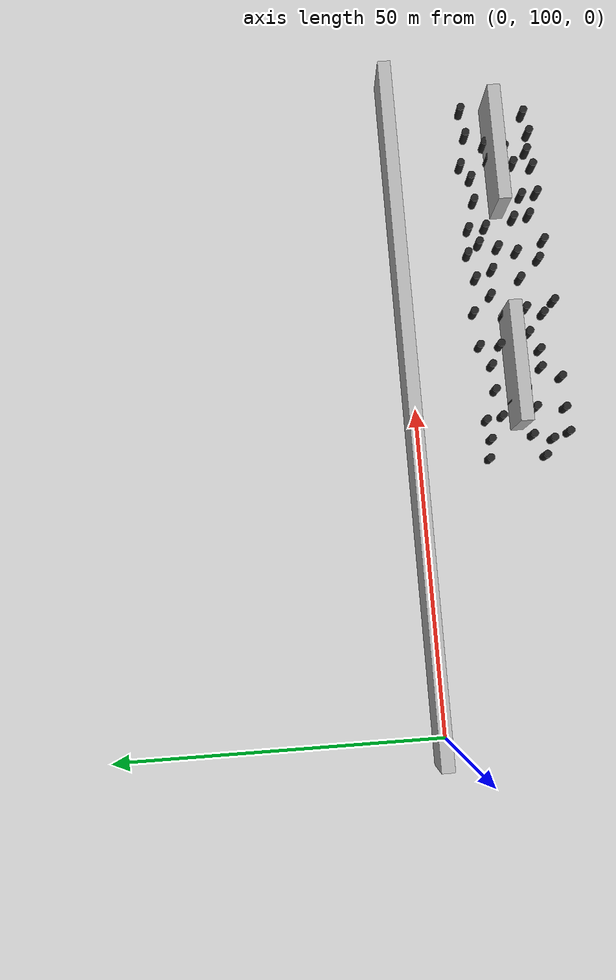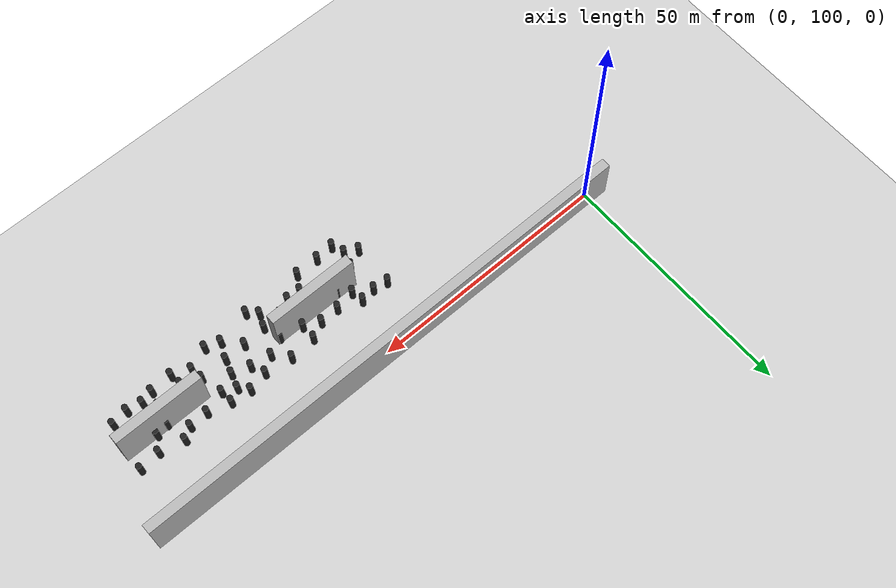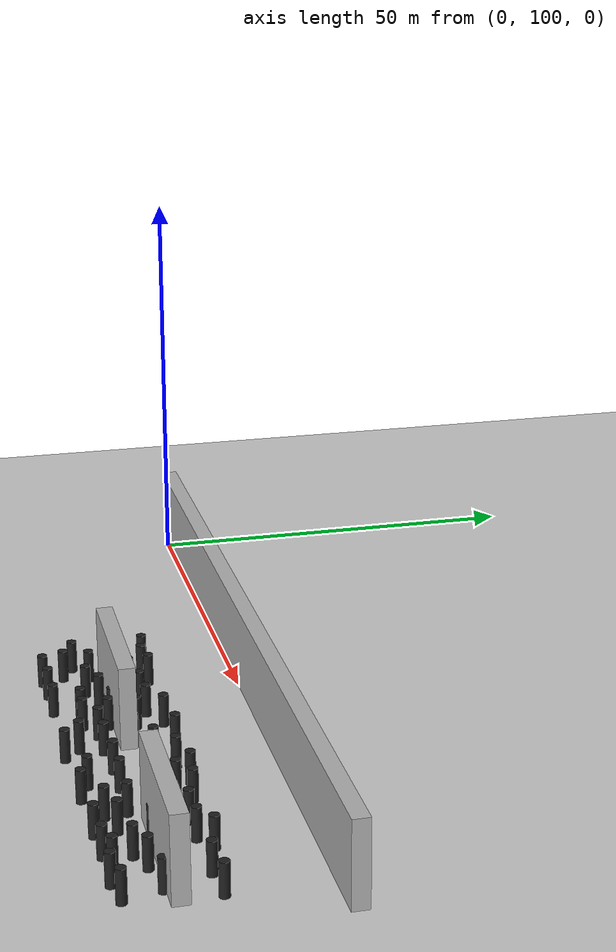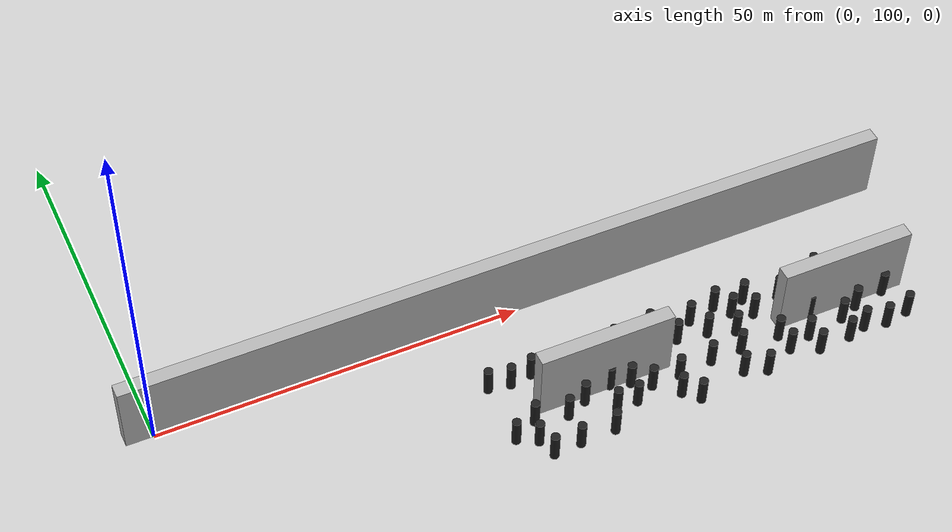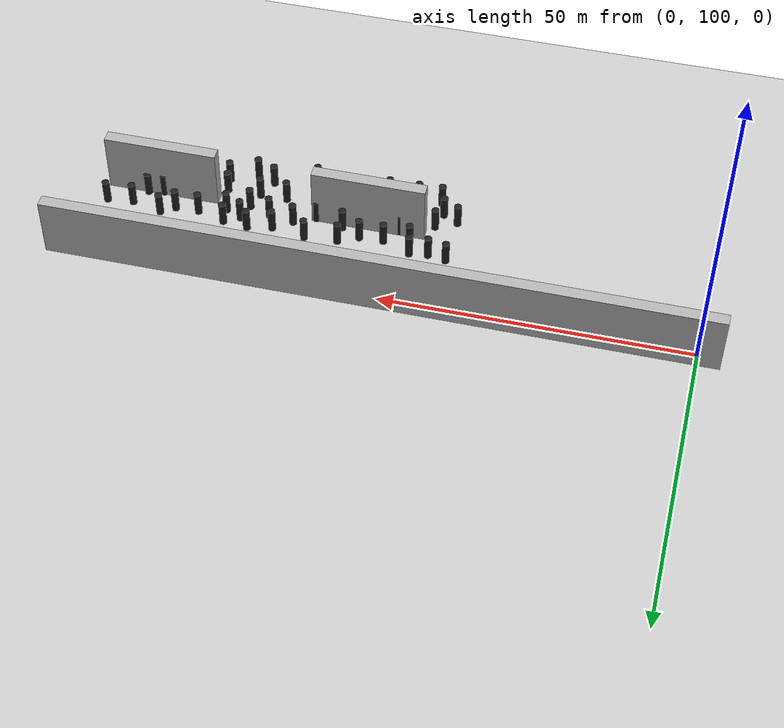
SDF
<sdf version="1.7">
 <world name="default">
  <model name="ground_plane">
   <pose>20 20 0 0 -0 0</pose>
   <static>1</static>
   <link name="link">
    <collision name="collision">
     <geometry><plane><normal>0 0 1</normal><size>200 200</size></plane></geometry>
     <surface><friction><ode><mu>100</mu><mu2>50</mu2></ode></friction></surface>
    </collision>
    <visual name="visual">
     <cast_shadows>0</cast_shadows>
     <geometry><plane><normal>0 0 1</normal><size>200 200</size></plane></geometry>
     <material>
      <script><uri>file://media/materials/scripts/gazebo.material</uri><name>Gazebo/Grey</name></script>
     </material>
    </visual>
   </link>
  </model>
  <model name="pillar_top_area_0">
   <static>1</static>
   <pose>65.27 77.0897 0 0 -0 0</pose>
   <link name="link">
    <pose>0 0 2 0 -0 0</pose>
    <inertial>
     <mass>1</mass>
     <inertia><ixx>0.083</ixx><ixy>0</ixy><ixz>0</ixz><iyy>0.083</iyy><iyz>0</iyz><izz>0.083</izz></inertia>
    </inertial>
    <collision name="collision">
     <geometry><cylinder><radius>0.6</radius><length>4</length></cylinder></geometry>
    </collision>
    <visual name="visual">
     <geometry><cylinder><radius>0.6</radius><length>4</length></cylinder></geometry>
     <material>
      <script><uri>file://media/materials/scripts/gazebo.material</uri><name>Gazebo/Black</name></script>
     </material>
    </visual>
   </link>
  </model>
  <model name="pillar_top_area_4">
   <static>1</static>
   <pose>58.2136 82.9709 0 0 -0 0</pose>
   <link name="link">
    <pose>0 0 2 0 -0 0</pose>
    <inertial>
     <mass>1</mass>
     <inertia><ixx>0.083</ixx><ixy>0</ixy><ixz>0</ixz><iyy>0.083</iyy><iyz>0</iyz><izz>0.083</izz></inertia>
    </inertial>
    <collision name="collision">
     <geometry><cylinder><radius>0.6</radius><length>4</length></cylinder></geometry>
    </collision>
    <visual name="visual">
     <geometry><cylinder><radius>0.6</radius><length>4</length></cylinder></geometry>
     <material>
      <script><uri>file://media/materials/scripts/gazebo.material</uri><name>Gazebo/Black</name></script>
     </material>
    </visual>
   </link>
  </model>
  <model name="pillar_top_area_5">
   <static>1</static>
   <pose>83.1219 77.8962 0 0 -0 0</pose>
   <link name="link">
    <pose>0 0 2 0 -0 0</pose>
    <inertial>
     <mass>1</mass>
     <inertia><ixx>0.083</ixx><ixy>0</ixy><ixz>0</ixz><iyy>0.083</iyy><iyz>0</iyz><izz>0.083</izz></inertia>
    </inertial>
    <collision name="collision">
     <geometry><cylinder><radius>0.6</radius><length>4</length></cylinder></geometry>
    </collision>
    <visual name="visual">
     <geometry><cylinder><radius>0.6</radius><length>4</length></cylinder></geometry>
     <material>
      <script><uri>file://media/materials/scripts/gazebo.material</uri><name>Gazebo/Black</name></script>
     </material>
    </visual>
   </link>
  </model>
  <model name="pillar_top_area_7">
   <static>1</static>
   <pose>54.8479 80.1541 0 0 -0 0</pose>
   <link name="link">
    <pose>0 0 2 0 -0 0</pose>
    <inertial>
     <mass>1</mass>
     <inertia><ixx>0.083</ixx><ixy>0</ixy><ixz>0</ixz><iyy>0.083</iyy><iyz>0</iyz><izz>0.083</izz></inertia>
    </inertial>
    <collision name="collision">
     <geometry><cylinder><radius>0.6</radius><length>4</length></cylinder></geometry>
    </collision>
    <visual name="visual">
     <geometry><cylinder><radius>0.6</radius><length>4</length></cylinder></geometry>
     <material>
      <script><uri>file://media/materials/scripts/gazebo.material</uri><name>Gazebo/Black</name></script>
     </material>
    </visual>
   </link>
  </model>
  <model name="pillar_top_area_15">
   <static>1</static>
   <pose>74.624 84.9376 0 0 -0 0</pose>
   <link name="link">
    <pose>0 0 2 0 -0 0</pose>
    <inertial>
     <mass>1</mass>
     <inertia><ixx>0.083</ixx><ixy>0</ixy><ixz>0</ixz><iyy>0.083</iyy><iyz>0</iyz><izz>0.083</izz></inertia>
    </inertial>
    <collision name="collision">
     <geometry><cylinder><radius>0.6</radius><length>4</length></cylinder></geometry>
    </collision>
    <visual name="visual">
     <geometry><cylinder><radius>0.6</radius><length>4</length></cylinder></geometry>
     <material>
      <script><uri>file://media/materials/scripts/gazebo.material</uri><name>Gazebo/Black</name></script>
     </material>
    </visual>
   </link>
  </model>
  <model name="pillar_top_area_16">
   <static>1</static>
   <pose>88.5589 89.563 0 0 -0 0</pose>
   <link name="link">
    <pose>0 0 2 0 -0 0</pose>
    <inertial>
     <mass>1</mass>
     <inertia><ixx>0.083</ixx><ixy>0</ixy><ixz>0</ixz><iyy>0.083</iyy><iyz>0</iyz><izz>0.083</izz></inertia>
    </inertial>
    <collision name="collision">
     <geometry><cylinder><radius>0.6</radius><length>4</length></cylinder></geometry>
    </collision>
    <visual name="visual">
     <geometry><cylinder><radius>0.6</radius><length>4</length></cylinder></geometry>
     <material>
      <script><uri>file://media/materials/scripts/gazebo.material</uri><name>Gazebo/Black</name></script>
     </material>
    </visual>
   </link>
  </model>
  <model name="pillar_top_area_19">
   <static>1</static>
   <pose>72.2869 78.6912 0 0 -0 0</pose>
   <link name="link">
    <pose>0 0 2 0 -0 0</pose>
    <inertial>
     <mass>1</mass>
     <inertia><ixx>0.083</ixx><ixy>0</ixy><ixz>0</ixz><iyy>0.083</iyy><iyz>0</iyz><izz>0.083</izz></inertia>
    </inertial>
    <collision name="collision">
     <geometry><cylinder><radius>0.6</radius><length>4</length></cylinder></geometry>
    </collision>
    <visual name="visual">
     <geometry><cylinder><radius>0.6</radius><length>4</length></cylinder></geometry>
     <material>
      <script><uri>file://media/materials/scripts/gazebo.material</uri><name>Gazebo/Black</name></script>
     </material>
    </visual>
   </link>
  </model>
  <model name="pillar_top_area_22">
   <static>1</static>
   <pose>58.8828 86.1294 0 0 -0 0</pose>
   <link name="link">
    <pose>0 0 2 0 -0 0</pose>
    <inertial>
     <mass>1</mass>
     <inertia><ixx>0.083</ixx><ixy>0</ixy><ixz>0</ixz><iyy>0.083</iyy><iyz>0</iyz><izz>0.083</izz></inertia>
    </inertial>
    <collision name="collision">
     <geometry><cylinder><radius>0.6</radius><length>4</length></cylinder></geometry>
    </collision>
    <visual name="visual">
     <geometry><cylinder><radius>0.6</radius><length>4</length></cylinder></geometry>
     <material>
      <script><uri>file://media/materials/scripts/gazebo.material</uri><name>Gazebo/Black</name></script>
     </material>
    </visual>
   </link>
  </model>
  <model name="pillar_top_area_23">
   <static>1</static>
   <pose>51.7859 87.6018 0 0 -0 0</pose>
   <link name="link">
    <pose>0 0 2 0 -0 0</pose>
    <inertial>
     <mass>1</mass>
     <inertia><ixx>0.083</ixx><ixy>0</ixy><ixz>0</ixz><iyy>0.083</iyy><iyz>0</iyz><izz>0.083</izz></inertia>
    </inertial>
    <collision name="collision">
     <geometry><cylinder><radius>0.6</radius><length>4</length></cylinder></geometry>
    </collision>
    <visual name="visual">
     <geometry><cylinder><radius>0.6</radius><length>4</length></cylinder></geometry>
     <material>
      <script><uri>file://media/materials/scripts/gazebo.material</uri><name>Gazebo/Black</name></script>
     </material>
    </visual>
   </link>
  </model>
  <model name="pillar_top_area_24">
   <static>1</static>
   <pose>58.9276 89.331 0 0 -0 0</pose>
   <link name="link">
    <pose>0 0 2 0 -0 0</pose>
    <inertial>
     <mass>1</mass>
     <inertia><ixx>0.083</ixx><ixy>0</ixy><ixz>0</ixz><iyy>0.083</iyy><iyz>0</iyz><izz>0.083</izz></inertia>
    </inertial>
    <collision name="collision">
     <geometry><cylinder><radius>0.6</radius><length>4</length></cylinder></geometry>
    </collision>
    <visual name="visual">
     <geometry><cylinder><radius>0.6</radius><length>4</length></cylinder></geometry>
     <material>
      <script><uri>file://media/materials/scripts/gazebo.material</uri><name>Gazebo/Black</name></script>
     </material>
    </visual>
   </link>
  </model>
  <model name="pillar_top_area_29">
   <static>1</static>
   <pose>78.1244 86.5801 0 0 -0 0</pose>
   <link name="link">
    <pose>0 0 2 0 -0 0</pose>
    <inertial>
     <mass>1</mass>
     <inertia><ixx>0.083</ixx><ixy>0</ixy><ixz>0</ixz><iyy>0.083</iyy><iyz>0</iyz><izz>0.083</izz></inertia>
    </inertial>
    <collision name="collision">
     <geometry><cylinder><radius>0.6</radius><length>4</length></cylinder></geometry>
    </collision>
    <visual name="visual">
     <geometry><cylinder><radius>0.6</radius><length>4</length></cylinder></geometry>
     <material>
      <script><uri>file://media/materials/scripts/gazebo.material</uri><name>Gazebo/Black</name></script>
     </material>
    </visual>
   </link>
  </model>
  <model name="pillar_top_area_33">
   <static>1</static>
   <pose>82.5088 87.9812 0 0 -0 0</pose>
   <link name="link">
    <pose>0 0 2 0 -0 0</pose>
    <inertial>
     <mass>1</mass>
     <inertia><ixx>0.083</ixx><ixy>0</ixy><ixz>0</ixz><iyy>0.083</iyy><iyz>0</iyz><izz>0.083</izz></inertia>
    </inertial>
    <collision name="collision">
     <geometry><cylinder><radius>0.6</radius><length>4</length></cylinder></geometry>
    </collision>
    <visual name="visual">
     <geometry><cylinder><radius>0.6</radius><length>4</length></cylinder></geometry>
     <material>
      <script><uri>file://media/materials/scripts/gazebo.material</uri><name>Gazebo/Black</name></script>
     </material>
    </visual>
   </link>
  </model>
  <model name="pillar_top_area_34">
   <static>1</static>
   <pose>63.4216 78.9184 0 0 -0 0</pose>
   <link name="link">
    <pose>0 0 2 0 -0 0</pose>
    <inertial>
     <mass>1</mass>
     <inertia><ixx>0.083</ixx><ixy>0</ixy><ixz>0</ixz><iyy>0.083</iyy><iyz>0</iyz><izz>0.083</izz></inertia>
    </inertial>
    <collision name="collision">
     <geometry><cylinder><radius>0.6</radius><length>4</length></cylinder></geometry>
    </collision>
    <visual name="visual">
     <geometry><cylinder><radius>0.6</radius><length>4</length></cylinder></geometry>
     <material>
      <script><uri>file://media/materials/scripts/gazebo.material</uri><name>Gazebo/Black</name></script>
     </material>
    </visual>
   </link>
  </model>
  <model name="pillar_top_area_36">
   <static>1</static>
   <pose>69.8698 88.8655 0 0 -0 0</pose>
   <link name="link">
    <pose>0 0 2 0 -0 0</pose>
    <inertial>
     <mass>1</mass>
     <inertia><ixx>0.083</ixx><ixy>0</ixy><ixz>0</ixz><iyy>0.083</iyy><iyz>0</iyz><izz>0.083</izz></inertia>
    </inertial>
    <collision name="collision">
     <geometry><cylinder><radius>0.6</radius><length>4</length></cylinder></geometry>
    </collision>
    <visual name="visual">
     <geometry><cylinder><radius>0.6</radius><length>4</length></cylinder></geometry>
     <material>
      <script><uri>file://media/materials/scripts/gazebo.material</uri><name>Gazebo/Black</name></script>
     </material>
    </visual>
   </link>
  </model>
  <model name="pillar_top_area_41">
   <static>1</static>
   <pose>71.0641 86.1713 0 0 -0 0</pose>
   <link name="link">
    <pose>0 0 2 0 -0 0</pose>
    <inertial>
     <mass>1</mass>
     <inertia><ixx>0.083</ixx><ixy>0</ixy><ixz>0</ixz><iyy>0.083</iyy><iyz>0</iyz><izz>0.083</izz></inertia>
    </inertial>
    <collision name="collision">
     <geometry><cylinder><radius>0.6</radius><length>4</length></cylinder></geometry>
    </collision>
    <visual name="visual">
     <geometry><cylinder><radius>0.6</radius><length>4</length></cylinder></geometry>
     <material>
      <script><uri>file://media/materials/scripts/gazebo.material</uri><name>Gazebo/Black</name></script>
     </material>
    </visual>
   </link>
  </model>
  <model name="pillar_top_area_42">
   <static>1</static>
   <pose>79.2469 82.0038 0 0 -0 0</pose>
   <link name="link">
    <pose>0 0 2 0 -0 0</pose>
    <inertial>
     <mass>1</mass>
     <inertia><ixx>0.083</ixx><ixy>0</ixy><ixz>0</ixz><iyy>0.083</iyy><iyz>0</iyz><izz>0.083</izz></inertia>
    </inertial>
    <collision name="collision">
     <geometry><cylinder><radius>0.6</radius><length>4</length></cylinder></geometry>
    </collision>
    <visual name="visual">
     <geometry><cylinder><radius>0.6</radius><length>4</length></cylinder></geometry>
     <material>
      <script><uri>file://media/materials/scripts/gazebo.material</uri><name>Gazebo/Black</name></script>
     </material>
    </visual>
   </link>
  </model>
  <model name="pillar_top_area_43">
   <static>1</static>
   <pose>44.4192 82.4946 0 0 -0 0</pose>
   <link name="link">
    <pose>0 0 2 0 -0 0</pose>
    <inertial>
     <mass>1</mass>
     <inertia><ixx>0.083</ixx><ixy>0</ixy><ixz>0</ixz><iyy>0.083</iyy><iyz>0</iyz><izz>0.083</izz></inertia>
    </inertial>
    <collision name="collision">
     <geometry><cylinder><radius>0.6</radius><length>4</length></cylinder></geometry>
    </collision>
    <visual name="visual">
     <geometry><cylinder><radius>0.6</radius><length>4</length></cylinder></geometry>
     <material>
      <script><uri>file://media/materials/scripts/gazebo.material</uri><name>Gazebo/Black</name></script>
     </material>
    </visual>
   </link>
  </model>
  <model name="pillar_top_area_46">
   <static>1</static>
   <pose>48.2511 77.0909 0 0 -0 0</pose>
   <link name="link">
    <pose>0 0 2 0 -0 0</pose>
    <inertial>
     <mass>1</mass>
     <inertia><ixx>0.083</ixx><ixy>0</ixy><ixz>0</ixz><iyy>0.083</iyy><iyz>0</iyz><izz>0.083</izz></inertia>
    </inertial>
    <collision name="collision">
     <geometry><cylinder><radius>0.6</radius><length>4</length></cylinder></geometry>
    </collision>
    <visual name="visual">
     <geometry><cylinder><radius>0.6</radius><length>4</length></cylinder></geometry>
     <material>
      <script><uri>file://media/materials/scripts/gazebo.material</uri><name>Gazebo/Black</name></script>
     </material>
    </visual>
   </link>
  </model>
  <model name="pillar_top_area_52">
   <static>1</static>
   <pose>66.925 86.8231 0 0 -0 0</pose>
   <link name="link">
    <pose>0 0 2 0 -0 0</pose>
    <inertial>
     <mass>1</mass>
     <inertia><ixx>0.083</ixx><ixy>0</ixy><ixz>0</ixz><iyy>0.083</iyy><iyz>0</iyz><izz>0.083</izz></inertia>
    </inertial>
    <collision name="collision">
     <geometry><cylinder><radius>0.6</radius><length>4</length></cylinder></geometry>
    </collision>
    <visual name="visual">
     <geometry><cylinder><radius>0.6</radius><length>4</length></cylinder></geometry>
     <material>
      <script><uri>file://media/materials/scripts/gazebo.material</uri><name>Gazebo/Black</name></script>
     </material>
    </visual>
   </link>
  </model>
  <model name="pillar_top_area_54">
   <static>1</static>
   <pose>64.3257 89.7409 0 0 -0 0</pose>
   <link name="link">
    <pose>0 0 2 0 -0 0</pose>
    <inertial>
     <mass>1</mass>
     <inertia><ixx>0.083</ixx><ixy>0</ixy><ixz>0</ixz><iyy>0.083</iyy><iyz>0</iyz><izz>0.083</izz></inertia>
    </inertial>
    <collision name="collision">
     <geometry><cylinder><radius>0.6</radius><length>4</length></cylinder></geometry>
    </collision>
    <visual name="visual">
     <geometry><cylinder><radius>0.6</radius><length>4</length></cylinder></geometry>
     <material>
      <script><uri>file://media/materials/scripts/gazebo.material</uri><name>Gazebo/Black</name></script>
     </material>
    </visual>
   </link>
  </model>
  <model name="pillar_top_area_59">
   <static>1</static>
   <pose>89.2604 84.9417 0 0 -0 0</pose>
   <link name="link">
    <pose>0 0 2 0 -0 0</pose>
    <inertial>
     <mass>1</mass>
     <inertia><ixx>0.083</ixx><ixy>0</ixy><ixz>0</ixz><iyy>0.083</iyy><iyz>0</iyz><izz>0.083</izz></inertia>
    </inertial>
    <collision name="collision">
     <geometry><cylinder><radius>0.6</radius><length>4</length></cylinder></geometry>
    </collision>
    <visual name="visual">
     <geometry><cylinder><radius>0.6</radius><length>4</length></cylinder></geometry>
     <material>
      <script><uri>file://media/materials/scripts/gazebo.material</uri><name>Gazebo/Black</name></script>
     </material>
    </visual>
   </link>
  </model>
  <model name="pillar_top_area_63">
   <static>1</static>
   <pose>51.5691 82.754 0 0 -0 0</pose>
   <link name="link">
    <pose>0 0 2 0 -0 0</pose>
    <inertial>
     <mass>1</mass>
     <inertia><ixx>0.083</ixx><ixy>0</ixy><ixz>0</ixz><iyy>0.083</iyy><iyz>0</iyz><izz>0.083</izz></inertia>
    </inertial>
    <collision name="collision">
     <geometry><cylinder><radius>0.6</radius><length>4</length></cylinder></geometry>
    </collision>
    <visual name="visual">
     <geometry><cylinder><radius>0.6</radius><length>4</length></cylinder></geometry>
     <material>
      <script><uri>file://media/materials/scripts/gazebo.material</uri><name>Gazebo/Black</name></script>
     </material>
    </visual>
   </link>
  </model>
  <model name="pillar_top_area_66">
   <static>1</static>
   <pose>73.8687 89.7593 0 0 -0 0</pose>
   <link name="link">
    <pose>0 0 2 0 -0 0</pose>
    <inertial>
     <mass>1</mass>
     <inertia><ixx>0.083</ixx><ixy>0</ixy><ixz>0</ixz><iyy>0.083</iyy><iyz>0</iyz><izz>0.083</izz></inertia>
    </inertial>
    <collision name="collision">
     <geometry><cylinder><radius>0.6</radius><length>4</length></cylinder></geometry>
    </collision>
    <visual name="visual">
     <geometry><cylinder><radius>0.6</radius><length>4</length></cylinder></geometry>
     <material>
      <script><uri>file://media/materials/scripts/gazebo.material</uri><name>Gazebo/Black</name></script>
     </material>
    </visual>
   </link>
  </model>
  <model name="pillar_top_area_70">
   <static>1</static>
   <pose>69.3007 81.9219 0 0 -0 0</pose>
   <link name="link">
    <pose>0 0 2 0 -0 0</pose>
    <inertial>
     <mass>1</mass>
     <inertia><ixx>0.083</ixx><ixy>0</ixy><ixz>0</ixz><iyy>0.083</iyy><iyz>0</iyz><izz>0.083</izz></inertia>
    </inertial>
    <collision name="collision">
     <geometry><cylinder><radius>0.6</radius><length>4</length></cylinder></geometry>
    </collision>
    <visual name="visual">
     <geometry><cylinder><radius>0.6</radius><length>4</length></cylinder></geometry>
     <material>
      <script><uri>file://media/materials/scripts/gazebo.material</uri><name>Gazebo/Black</name></script>
     </material>
    </visual>
   </link>
  </model>
  <model name="pillar_top_area_73">
   <static>1</static>
   <pose>53.1128 77.1869 0 0 -0 0</pose>
   <link name="link">
    <pose>0 0 2 0 -0 0</pose>
    <inertial>
     <mass>1</mass>
     <inertia><ixx>0.083</ixx><ixy>0</ixy><ixz>0</ixz><iyy>0.083</iyy><iyz>0</iyz><izz>0.083</izz></inertia>
    </inertial>
    <collision name="collision">
     <geometry><cylinder><radius>0.6</radius><length>4</length></cylinder></geometry>
    </collision>
    <visual name="visual">
     <geometry><cylinder><radius>0.6</radius><length>4</length></cylinder></geometry>
     <material>
      <script><uri>file://media/materials/scripts/gazebo.material</uri><name>Gazebo/Black</name></script>
     </material>
    </visual>
   </link>
  </model>
  <model name="pillar_top_area_80">
   <static>1</static>
   <pose>43.5974 79.4621 0 0 -0 0</pose>
   <link name="link">
    <pose>0 0 2 0 -0 0</pose>
    <inertial>
     <mass>1</mass>
     <inertia><ixx>0.083</ixx><ixy>0</ixy><ixz>0</ixz><iyy>0.083</iyy><iyz>0</iyz><izz>0.083</izz></inertia>
    </inertial>
    <collision name="collision">
     <geometry><cylinder><radius>0.6</radius><length>4</length></cylinder></geometry>
    </collision>
    <visual name="visual">
     <geometry><cylinder><radius>0.6</radius><length>4</length></cylinder></geometry>
     <material>
      <script><uri>file://media/materials/scripts/gazebo.material</uri><name>Gazebo/Black</name></script>
     </material>
    </visual>
   </link>
  </model>
  <model name="pillar_top_area_84">
   <static>1</static>
   <pose>93.2538 78.1832 0 0 -0 0</pose>
   <link name="link">
    <pose>0 0 2 0 -0 0</pose>
    <inertial>
     <mass>1</mass>
     <inertia><ixx>0.083</ixx><ixy>0</ixy><ixz>0</ixz><iyy>0.083</iyy><iyz>0</iyz><izz>0.083</izz></inertia>
    </inertial>
    <collision name="collision">
     <geometry><cylinder><radius>0.6</radius><length>4</length></cylinder></geometry>
    </collision>
    <visual name="visual">
     <geometry><cylinder><radius>0.6</radius><length>4</length></cylinder></geometry>
     <material>
      <script><uri>file://media/materials/scripts/gazebo.material</uri><name>Gazebo/Black</name></script>
     </material>
    </visual>
   </link>
  </model>
  <model name="pillar_top_area_88">
   <static>1</static>
   <pose>81.5603 84.1281 0 0 -0 0</pose>
   <link name="link">
    <pose>0 0 2 0 -0 0</pose>
    <inertial>
     <mass>1</mass>
     <inertia><ixx>0.083</ixx><ixy>0</ixy><ixz>0</ixz><iyy>0.083</iyy><iyz>0</iyz><izz>0.083</izz></inertia>
    </inertial>
    <collision name="collision">
     <geometry><cylinder><radius>0.6</radius><length>4</length></cylinder></geometry>
    </collision>
    <visual name="visual">
     <geometry><cylinder><radius>0.6</radius><length>4</length></cylinder></geometry>
     <material>
      <script><uri>file://media/materials/scripts/gazebo.material</uri><name>Gazebo/Black</name></script>
     </material>
    </visual>
   </link>
  </model>
  <model name="pillar_top_area_92">
   <static>1</static>
   <pose>95.5353 83.1103 0 0 -0 0</pose>
   <link name="link">
    <pose>0 0 2 0 -0 0</pose>
    <inertial>
     <mass>1</mass>
     <inertia><ixx>0.083</ixx><ixy>0</ixy><ixz>0</ixz><iyy>0.083</iyy><iyz>0</iyz><izz>0.083</izz></inertia>
    </inertial>
    <collision name="collision">
     <geometry><cylinder><radius>0.6</radius><length>4</length></cylinder></geometry>
    </collision>
    <visual name="visual">
     <geometry><cylinder><radius>0.6</radius><length>4</length></cylinder></geometry>
     <material>
      <script><uri>file://media/materials/scripts/gazebo.material</uri><name>Gazebo/Black</name></script>
     </material>
    </visual>
   </link>
  </model>
  <model name="pillar_top_area_95">
   <static>1</static>
   <pose>44.1699 88.9934 0 0 -0 0</pose>
   <link name="link">
    <pose>0 0 2 0 -0 0</pose>
    <inertial>
     <mass>1</mass>
     <inertia><ixx>0.083</ixx><ixy>0</ixy><ixz>0</ixz><iyy>0.083</iyy><iyz>0</iyz><izz>0.083</izz></inertia>
    </inertial>
    <collision name="collision">
     <geometry><cylinder><radius>0.6</radius><length>4</length></cylinder></geometry>
    </collision>
    <visual name="visual">
     <geometry><cylinder><radius>0.6</radius><length>4</length></cylinder></geometry>
     <material>
      <script><uri>file://media/materials/scripts/gazebo.material</uri><name>Gazebo/Black</name></script>
     </material>
    </visual>
   </link>
  </model>
  <model name="pillar_top_area_97">
   <static>1</static>
   <pose>86.338 88.1133 0 0 -0 0</pose>
   <link name="link">
    <pose>0 0 2 0 -0 0</pose>
    <inertial>
     <mass>1</mass>
     <inertia><ixx>0.083</ixx><ixy>0</ixy><ixz>0</ixz><iyy>0.083</iyy><iyz>0</iyz><izz>0.083</izz></inertia>
    </inertial>
    <collision name="collision">
     <geometry><cylinder><radius>0.6</radius><length>4</length></cylinder></geometry>
    </collision>
    <visual name="visual">
     <geometry><cylinder><radius>0.6</radius><length>4</length></cylinder></geometry>
     <material>
      <script><uri>file://media/materials/scripts/gazebo.material</uri><name>Gazebo/Black</name></script>
     </material>
    </visual>
   </link>
  </model>
  <model name="pillar_top_area_104">
   <static>1</static>
   <pose>93.5399 88.3437 0 0 -0 0</pose>
   <link name="link">
    <pose>0 0 2 0 -0 0</pose>
    <inertial>
     <mass>1</mass>
     <inertia><ixx>0.083</ixx><ixy>0</ixy><ixz>0</ixz><iyy>0.083</iyy><iyz>0</iyz><izz>0.083</izz></inertia>
    </inertial>
    <collision name="collision">
     <geometry><cylinder><radius>0.6</radius><length>4</length></cylinder></geometry>
    </collision>
    <visual name="visual">
     <geometry><cylinder><radius>0.6</radius><length>4</length></cylinder></geometry>
     <material>
      <script><uri>file://media/materials/scripts/gazebo.material</uri><name>Gazebo/Black</name></script>
     </material>
    </visual>
   </link>
  </model>
  <model name="pillar_top_area_108">
   <static>1</static>
   <pose>73.7086 82.0137 0 0 -0 0</pose>
   <link name="link">
    <pose>0 0 2 0 -0 0</pose>
    <inertial>
     <mass>1</mass>
     <inertia><ixx>0.083</ixx><ixy>0</ixy><ixz>0</ixz><iyy>0.083</iyy><iyz>0</iyz><izz>0.083</izz></inertia>
    </inertial>
    <collision name="collision">
     <geometry><cylinder><radius>0.6</radius><length>4</length></cylinder></geometry>
    </collision>
    <visual name="visual">
     <geometry><cylinder><radius>0.6</radius><length>4</length></cylinder></geometry>
     <material>
      <script><uri>file://media/materials/scripts/gazebo.material</uri><name>Gazebo/Black</name></script>
     </material>
    </visual>
   </link>
  </model>
  <model name="pillar_top_area_111">
   <static>1</static>
   <pose>90.9914 82.3062 0 0 -0 0</pose>
   <link name="link">
    <pose>0 0 2 0 -0 0</pose>
    <inertial>
     <mass>1</mass>
     <inertia><ixx>0.083</ixx><ixy>0</ixy><ixz>0</ixz><iyy>0.083</iyy><iyz>0</iyz><izz>0.083</izz></inertia>
    </inertial>
    <collision name="collision">
     <geometry><cylinder><radius>0.6</radius><length>4</length></cylinder></geometry>
    </collision>
    <visual name="visual">
     <geometry><cylinder><radius>0.6</radius><length>4</length></cylinder></geometry>
     <material>
      <script><uri>file://media/materials/scripts/gazebo.material</uri><name>Gazebo/Black</name></script>
     </material>
    </visual>
   </link>
  </model>
  <model name="pillar_top_area_116">
   <static>1</static>
   <pose>97.8067 88.7369 0 0 -0 0</pose>
   <link name="link">
    <pose>0 0 2 0 -0 0</pose>
    <inertial>
     <mass>1</mass>
     <inertia><ixx>0.083</ixx><ixy>0</ixy><ixz>0</ixz><iyy>0.083</iyy><iyz>0</iyz><izz>0.083</izz></inertia>
    </inertial>
    <collision name="collision">
     <geometry><cylinder><radius>0.6</radius><length>4</length></cylinder></geometry>
    </collision>
    <visual name="visual">
     <geometry><cylinder><radius>0.6</radius><length>4</length></cylinder></geometry>
     <material>
      <script><uri>file://media/materials/scripts/gazebo.material</uri><name>Gazebo/Black</name></script>
     </material>
    </visual>
   </link>
  </model>
  <model name="pillar_top_area_154">
   <static>1</static>
   <pose>88.2992 81.1871 0 0 -0 0</pose>
   <link name="link">
    <pose>0 0 2 0 -0 0</pose>
    <inertial>
     <mass>1</mass>
     <inertia><ixx>0.083</ixx><ixy>0</ixy><ixz>0</ixz><iyy>0.083</iyy><iyz>0</iyz><izz>0.083</izz></inertia>
    </inertial>
    <collision name="collision">
     <geometry><cylinder><radius>0.6</radius><length>4</length></cylinder></geometry>
    </collision>
    <visual name="visual">
     <geometry><cylinder><radius>0.6</radius><length>4</length></cylinder></geometry>
     <material>
      <script><uri>file://media/materials/scripts/gazebo.material</uri><name>Gazebo/Black</name></script>
     </material>
    </visual>
   </link>
  </model>
  <model name="pillar_top_area_157">
   <static>1</static>
   <pose>64.5025 81.5473 0 0 -0 0</pose>
   <link name="link">
    <pose>0 0 2 0 -0 0</pose>
    <inertial>
     <mass>1</mass>
     <inertia><ixx>0.083</ixx><ixy>0</ixy><ixz>0</ixz><iyy>0.083</iyy><iyz>0</iyz><izz>0.083</izz></inertia>
    </inertial>
    <collision name="collision">
     <geometry><cylinder><radius>0.6</radius><length>4</length></cylinder></geometry>
    </collision>
    <visual name="visual">
     <geometry><cylinder><radius>0.6</radius><length>4</length></cylinder></geometry>
     <material>
      <script><uri>file://media/materials/scripts/gazebo.material</uri><name>Gazebo/Black</name></script>
     </material>
    </visual>
   </link>
  </model>
  <model name="pillar_top_area_163">
   <static>1</static>
   <pose>96.6308 78.7595 0 0 -0 0</pose>
   <link name="link">
    <pose>0 0 2 0 -0 0</pose>
    <inertial>
     <mass>1</mass>
     <inertia><ixx>0.083</ixx><ixy>0</ixy><ixz>0</ixz><iyy>0.083</iyy><iyz>0</iyz><izz>0.083</izz></inertia>
    </inertial>
    <collision name="collision">
     <geometry><cylinder><radius>0.6</radius><length>4</length></cylinder></geometry>
    </collision>
    <visual name="visual">
     <geometry><cylinder><radius>0.6</radius><length>4</length></cylinder></geometry>
     <material>
      <script><uri>file://media/materials/scripts/gazebo.material</uri><name>Gazebo/Black</name></script>
     </material>
    </visual>
   </link>
  </model>
  <model name="pillar_top_area_164">
   <static>1</static>
   <pose>48.7121 81.5432 0 0 -0 0</pose>
   <link name="link">
    <pose>0 0 2 0 -0 0</pose>
    <inertial>
     <mass>1</mass>
     <inertia><ixx>0.083</ixx><ixy>0</ixy><ixz>0</ixz><iyy>0.083</iyy><iyz>0</iyz><izz>0.083</izz></inertia>
    </inertial>
    <collision name="collision">
     <geometry><cylinder><radius>0.6</radius><length>4</length></cylinder></geometry>
    </collision>
    <visual name="visual">
     <geometry><cylinder><radius>0.6</radius><length>4</length></cylinder></geometry>
     <material>
      <script><uri>file://media/materials/scripts/gazebo.material</uri><name>Gazebo/Black</name></script>
     </material>
    </visual>
   </link>
  </model>
  <model name="pillar_top_area_173">
   <static>1</static>
   <pose>79.5821 79.4808 0 0 -0 0</pose>
   <link name="link">
    <pose>0 0 2 0 -0 0</pose>
    <inertial>
     <mass>1</mass>
     <inertia><ixx>0.083</ixx><ixy>0</ixy><ixz>0</ixz><iyy>0.083</iyy><iyz>0</iyz><izz>0.083</izz></inertia>
    </inertial>
    <collision name="collision">
     <geometry><cylinder><radius>0.6</radius><length>4</length></cylinder></geometry>
    </collision>
    <visual name="visual">
     <geometry><cylinder><radius>0.6</radius><length>4</length></cylinder></geometry>
     <material>
      <script><uri>file://media/materials/scripts/gazebo.material</uri><name>Gazebo/Black</name></script>
     </material>
    </visual>
   </link>
  </model>
  <model name="pillar_top_area_188">
   <static>1</static>
   <pose>91.8099 85.4351 0 0 -0 0</pose>
   <link name="link">
    <pose>0 0 2 0 -0 0</pose>
    <inertial>
     <mass>1</mass>
     <inertia><ixx>0.083</ixx><ixy>0</ixy><ixz>0</ixz><iyy>0.083</iyy><iyz>0</iyz><izz>0.083</izz></inertia>
    </inertial>
    <collision name="collision">
     <geometry><cylinder><radius>0.6</radius><length>4</length></cylinder></geometry>
    </collision>
    <visual name="visual">
     <geometry><cylinder><radius>0.6</radius><length>4</length></cylinder></geometry>
     <material>
      <script><uri>file://media/materials/scripts/gazebo.material</uri><name>Gazebo/Black</name></script>
     </material>
    </visual>
   </link>
  </model>
  <model name="pillar_top_area_198">
   <static>1</static>
   <pose>57.6792 80.0306 0 0 -0 0</pose>
   <link name="link">
    <pose>0 0 2 0 -0 0</pose>
    <inertial>
     <mass>1</mass>
     <inertia><ixx>0.083</ixx><ixy>0</ixy><ixz>0</ixz><iyy>0.083</iyy><iyz>0</iyz><izz>0.083</izz></inertia>
    </inertial>
    <collision name="collision">
     <geometry><cylinder><radius>0.6</radius><length>4</length></cylinder></geometry>
    </collision>
    <visual name="visual">
     <geometry><cylinder><radius>0.6</radius><length>4</length></cylinder></geometry>
     <material>
      <script><uri>file://media/materials/scripts/gazebo.material</uri><name>Gazebo/Black</name></script>
     </material>
    </visual>
   </link>
  </model>
  <model name="pillar_top_area_199">
   <static>1</static>
   <pose>47.6515 86.9112 0 0 -0 0</pose>
   <link name="link">
    <pose>0 0 2 0 -0 0</pose>
    <inertial>
     <mass>1</mass>
     <inertia><ixx>0.083</ixx><ixy>0</ixy><ixz>0</ixz><iyy>0.083</iyy><iyz>0</iyz><izz>0.083</izz></inertia>
    </inertial>
    <collision name="collision">
     <geometry><cylinder><radius>0.6</radius><length>4</length></cylinder></geometry>
    </collision>
    <visual name="visual">
     <geometry><cylinder><radius>0.6</radius><length>4</length></cylinder></geometry>
     <material>
      <script><uri>file://media/materials/scripts/gazebo.material</uri><name>Gazebo/Black</name></script>
     </material>
    </visual>
   </link>
  </model>
  <model name="pillar_top_area_200">
   <static>1</static>
   <pose>75.2358 77.6052 0 0 -0 0</pose>
   <link name="link">
    <pose>0 0 2 0 -0 0</pose>
    <inertial>
     <mass>1</mass>
     <inertia><ixx>0.083</ixx><ixy>0</ixy><ixz>0</ixz><iyy>0.083</iyy><iyz>0</iyz><izz>0.083</izz></inertia>
    </inertial>
    <collision name="collision">
     <geometry><cylinder><radius>0.6</radius><length>4</length></cylinder></geometry>
    </collision>
    <visual name="visual">
     <geometry><cylinder><radius>0.6</radius><length>4</length></cylinder></geometry>
     <material>
      <script><uri>file://media/materials/scripts/gazebo.material</uri><name>Gazebo/Black</name></script>
     </material>
    </visual>
   </link>
  </model>
  <model name="pillar_top_area_202">
   <static>1</static>
   <pose>49.7266 84.9182 0 0 -0 0</pose>
   <link name="link">
    <pose>0 0 2 0 -0 0</pose>
    <inertial>
     <mass>1</mass>
     <inertia><ixx>0.083</ixx><ixy>0</ixy><ixz>0</ixz><iyy>0.083</iyy><iyz>0</iyz><izz>0.083</izz></inertia>
    </inertial>
    <collision name="collision">
     <geometry><cylinder><radius>0.6</radius><length>4</length></cylinder></geometry>
    </collision>
    <visual name="visual">
     <geometry><cylinder><radius>0.6</radius><length>4</length></cylinder></geometry>
     <material>
      <script><uri>file://media/materials/scripts/gazebo.material</uri><name>Gazebo/Black</name></script>
     </material>
    </visual>
   </link>
  </model>
  <model name="pillar_top_area_209">
   <static>1</static>
   <pose>63.4625 85.0945 0 0 -0 0</pose>
   <link name="link">
    <pose>0 0 2 0 -0 0</pose>
    <inertial>
     <mass>1</mass>
     <inertia><ixx>0.083</ixx><ixy>0</ixy><ixz>0</ixz><iyy>0.083</iyy><iyz>0</iyz><izz>0.083</izz></inertia>
    </inertial>
    <collision name="collision">
     <geometry><cylinder><radius>0.6</radius><length>4</length></cylinder></geometry>
    </collision>
    <visual name="visual">
     <geometry><cylinder><radius>0.6</radius><length>4</length></cylinder></geometry>
     <material>
      <script><uri>file://media/materials/scripts/gazebo.material</uri><name>Gazebo/Black</name></script>
     </material>
    </visual>
   </link>
  </model>
  <model name="pillar_top_area_214">
   <static>1</static>
   <pose>60.5249 81.4739 0 0 -0 0</pose>
   <link name="link">
    <pose>0 0 2 0 -0 0</pose>
    <inertial>
     <mass>1</mass>
     <inertia><ixx>0.083</ixx><ixy>0</ixy><ixz>0</ixz><iyy>0.083</iyy><iyz>0</iyz><izz>0.083</izz></inertia>
    </inertial>
    <collision name="collision">
     <geometry><cylinder><radius>0.6</radius><length>4</length></cylinder></geometry>
    </collision>
    <visual name="visual">
     <geometry><cylinder><radius>0.6</radius><length>4</length></cylinder></geometry>
     <material>
      <script><uri>file://media/materials/scripts/gazebo.material</uri><name>Gazebo/Black</name></script>
     </material>
    </visual>
   </link>
  </model>
  <model name="pillar_top_area_223">
   <static>1</static>
   <pose>47.1828 89.4121 0 0 -0 0</pose>
   <link name="link">
    <pose>0 0 2 0 -0 0</pose>
    <inertial>
     <mass>1</mass>
     <inertia><ixx>0.083</ixx><ixy>0</ixy><ixz>0</ixz><iyy>0.083</iyy><iyz>0</iyz><izz>0.083</izz></inertia>
    </inertial>
    <collision name="collision">
     <geometry><cylinder><radius>0.6</radius><length>4</length></cylinder></geometry>
    </collision>
    <visual name="visual">
     <geometry><cylinder><radius>0.6</radius><length>4</length></cylinder></geometry>
     <material>
      <script><uri>file://media/materials/scripts/gazebo.material</uri><name>Gazebo/Black</name></script>
     </material>
    </visual>
   </link>
  </model>
  <model name="pillar_top_area_257">
   <static>1</static>
   <pose>87.651 78.1434 0 0 -0 0</pose>
   <link name="link">
    <pose>0 0 2 0 -0 0</pose>
    <inertial>
     <mass>1</mass>
     <inertia><ixx>0.083</ixx><ixy>0</ixy><ixz>0</ixz><iyy>0.083</iyy><iyz>0</iyz><izz>0.083</izz></inertia>
    </inertial>
    <collision name="collision">
     <geometry><cylinder><radius>0.6</radius><length>4</length></cylinder></geometry>
    </collision>
    <visual name="visual">
     <geometry><cylinder><radius>0.6</radius><length>4</length></cylinder></geometry>
     <material>
      <script><uri>file://media/materials/scripts/gazebo.material</uri><name>Gazebo/Black</name></script>
     </material>
    </visual>
   </link>
  </model>
  <model name="pillar_top_area_265">
   <static>1</static>
   <pose>41.2042 89.5167 0 0 -0 0</pose>
   <link name="link">
    <pose>0 0 2 0 -0 0</pose>
    <inertial>
     <mass>1</mass>
     <inertia><ixx>0.083</ixx><ixy>0</ixy><ixz>0</ixz><iyy>0.083</iyy><iyz>0</iyz><izz>0.083</izz></inertia>
    </inertial>
    <collision name="collision">
     <geometry><cylinder><radius>0.6</radius><length>4</length></cylinder></geometry>
    </collision>
    <visual name="visual">
     <geometry><cylinder><radius>0.6</radius><length>4</length></cylinder></geometry>
     <material>
      <script><uri>file://media/materials/scripts/gazebo.material</uri><name>Gazebo/Black</name></script>
     </material>
    </visual>
   </link>
  </model>
  <model name="pillar_top_area_275">
   <static>1</static>
   <pose>82.8841 80.4032 0 0 -0 0</pose>
   <link name="link">
    <pose>0 0 2 0 -0 0</pose>
    <inertial>
     <mass>1</mass>
     <inertia><ixx>0.083</ixx><ixy>0</ixy><ixz>0</ixz><iyy>0.083</iyy><iyz>0</iyz><izz>0.083</izz></inertia>
    </inertial>
    <collision name="collision">
     <geometry><cylinder><radius>0.6</radius><length>4</length></cylinder></geometry>
    </collision>
    <visual name="visual">
     <geometry><cylinder><radius>0.6</radius><length>4</length></cylinder></geometry>
     <material>
      <script><uri>file://media/materials/scripts/gazebo.material</uri><name>Gazebo/Black</name></script>
     </material>
    </visual>
   </link>
  </model>
  <model name="pillar_top_area_284">
   <static>1</static>
   <pose>55.7397 87.7452 0 0 -0 0</pose>
   <link name="link">
    <pose>0 0 2 0 -0 0</pose>
    <inertial>
     <mass>1</mass>
     <inertia><ixx>0.083</ixx><ixy>0</ixy><ixz>0</ixz><iyy>0.083</iyy><iyz>0</iyz><izz>0.083</izz></inertia>
    </inertial>
    <collision name="collision">
     <geometry><cylinder><radius>0.6</radius><length>4</length></cylinder></geometry>
    </collision>
    <visual name="visual">
     <geometry><cylinder><radius>0.6</radius><length>4</length></cylinder></geometry>
     <material>
      <script><uri>file://media/materials/scripts/gazebo.material</uri><name>Gazebo/Black</name></script>
     </material>
    </visual>
   </link>
  </model>
  <model name="pillar_top_area_301">
   <static>1</static>
   <pose>77.9618 89.288 0 0 -0 0</pose>
   <link name="link">
    <pose>0 0 2 0 -0 0</pose>
    <inertial>
     <mass>1</mass>
     <inertia><ixx>0.083</ixx><ixy>0</ixy><ixz>0</ixz><iyy>0.083</iyy><iyz>0</iyz><izz>0.083</izz></inertia>
    </inertial>
    <collision name="collision">
     <geometry><cylinder><radius>0.6</radius><length>4</length></cylinder></geometry>
    </collision>
    <visual name="visual">
     <geometry><cylinder><radius>0.6</radius><length>4</length></cylinder></geometry>
     <material>
      <script><uri>file://media/materials/scripts/gazebo.material</uri><name>Gazebo/Black</name></script>
     </material>
    </visual>
   </link>
  </model>
  <model name="pillar_top_area_338">
   <static>1</static>
   <pose>41.0693 80.8458 0 0 -0 0</pose>
   <link name="link">
    <pose>0 0 2 0 -0 0</pose>
    <inertial>
     <mass>1</mass>
     <inertia><ixx>0.083</ixx><ixy>0</ixy><ixz>0</ixz><iyy>0.083</iyy><iyz>0</iyz><izz>0.083</izz></inertia>
    </inertial>
    <collision name="collision">
     <geometry><cylinder><radius>0.6</radius><length>4</length></cylinder></geometry>
    </collision>
    <visual name="visual">
     <geometry><cylinder><radius>0.6</radius><length>4</length></cylinder></geometry>
     <material>
      <script><uri>file://media/materials/scripts/gazebo.material</uri><name>Gazebo/Black</name></script>
     </material>
    </visual>
   </link>
  </model>
  <model name="pillar_top_area_350">
   <static>1</static>
   <pose>75.4815 87.8486 0 0 -0 0</pose>
   <link name="link">
    <pose>0 0 2 0 -0 0</pose>
    <inertial>
     <mass>1</mass>
     <inertia><ixx>0.083</ixx><ixy>0</ixy><ixz>0</ixz><iyy>0.083</iyy><iyz>0</iyz><izz>0.083</izz></inertia>
    </inertial>
    <collision name="collision">
     <geometry><cylinder><radius>0.6</radius><length>4</length></cylinder></geometry>
    </collision>
    <visual name="visual">
     <geometry><cylinder><radius>0.6</radius><length>4</length></cylinder></geometry>
     <material>
      <script><uri>file://media/materials/scripts/gazebo.material</uri><name>Gazebo/Black</name></script>
     </material>
    </visual>
   </link>
  </model>
  <model name="pillar_top_area_354">
   <static>1</static>
   <pose>84.846 83.7577 0 0 -0 0</pose>
   <link name="link">
    <pose>0 0 2 0 -0 0</pose>
    <inertial>
     <mass>1</mass>
     <inertia><ixx>0.083</ixx><ixy>0</ixy><ixz>0</ixz><iyy>0.083</iyy><iyz>0</iyz><izz>0.083</izz></inertia>
    </inertial>
    <collision name="collision">
     <geometry><cylinder><radius>0.6</radius><length>4</length></cylinder></geometry>
    </collision>
    <visual name="visual">
     <geometry><cylinder><radius>0.6</radius><length>4</length></cylinder></geometry>
     <material>
      <script><uri>file://media/materials/scripts/gazebo.material</uri><name>Gazebo/Black</name></script>
     </material>
    </visual>
   </link>
  </model>
  <model name="pillar_top_area_360">
   <static>1</static>
   <pose>44.4633 76.8859 0 0 -0 0</pose>
   <link name="link">
    <pose>0 0 2 0 -0 0</pose>
    <inertial>
     <mass>1</mass>
     <inertia><ixx>0.083</ixx><ixy>0</ixy><ixz>0</ixz><iyy>0.083</iyy><iyz>0</iyz><izz>0.083</izz></inertia>
    </inertial>
    <collision name="collision">
     <geometry><cylinder><radius>0.6</radius><length>4</length></cylinder></geometry>
    </collision>
    <visual name="visual">
     <geometry><cylinder><radius>0.6</radius><length>4</length></cylinder></geometry>
     <material>
      <script><uri>file://media/materials/scripts/gazebo.material</uri><name>Gazebo/Black</name></script>
     </material>
    </visual>
   </link>
  </model>
  <model name="pillar_top_area_363">
   <static>1</static>
   <pose>55.6224 83.7582 0 0 -0 0</pose>
   <link name="link">
    <pose>0 0 2 0 -0 0</pose>
    <inertial>
     <mass>1</mass>
     <inertia><ixx>0.083</ixx><ixy>0</ixy><ixz>0</ixz><iyy>0.083</iyy><iyz>0</iyz><izz>0.083</izz></inertia>
    </inertial>
    <collision name="collision">
     <geometry><cylinder><radius>0.6</radius><length>4</length></cylinder></geometry>
    </collision>
    <visual name="visual">
     <geometry><cylinder><radius>0.6</radius><length>4</length></cylinder></geometry>
     <material>
      <script><uri>file://media/materials/scripts/gazebo.material</uri><name>Gazebo/Black</name></script>
     </material>
    </visual>
   </link>
  </model>
  <model name="pillar_top_area_389">
   <static>1</static>
   <pose>90.2283 78.8228 0 0 -0 0</pose>
   <link name="link">
    <pose>0 0 2 0 -0 0</pose>
    <inertial>
     <mass>1</mass>
     <inertia><ixx>0.083</ixx><ixy>0</ixy><ixz>0</ixz><iyy>0.083</iyy><iyz>0</iyz><izz>0.083</izz></inertia>
    </inertial>
    <collision name="collision">
     <geometry><cylinder><radius>0.6</radius><length>4</length></cylinder></geometry>
    </collision>
    <visual name="visual">
     <geometry><cylinder><radius>0.6</radius><length>4</length></cylinder></geometry>
     <material>
      <script><uri>file://media/materials/scripts/gazebo.material</uri><name>Gazebo/Black</name></script>
     </material>
    </visual>
   </link>
  </model>
  <model name="center_wall_clone_0_clone_5">
   <static>1</static>
   <pose>54.866 84.4867 5.00499 0 -0 0</pose>
   <link name="link">
    <collision name="collision"><geometry><box><size>18.5054 2 10</size></box></geometry></collision>
    <visual name="visual">
     <geometry><box><size>18.5054 2 10</size></box></geometry>
     <material>
      <ambient>0.6 0.6 0.6 1</ambient>
      <diffuse>0.7 0.7 0.7 1</diffuse>
      <specular>0.2 0.2 0.2 1</specular>
     </material>
    </visual>
   </link>
  </model>
  <model name="center_wall_clone_0_clone_7">
   <static>1</static>
   <pose>89.2914 84.3108 5.00499 0 -0 0</pose>
   <link name="link">
    <collision name="collision"><geometry><box><size>18.5054 2 10</size></box></geometry></collision>
    <visual name="visual">
     <geometry><box><size>18.5054 2 10</size></box></geometry>
     <material>
      <ambient>0.6 0.6 0.6 1</ambient>
      <diffuse>0.7 0.7 0.7 1</diffuse>
      <specular>0.2 0.2 0.2 1</specular>
     </material>
    </visual>
   </link>
  </model>
  <model name="center_wall_clone_clone_clone_clone_clone_clone">
   <static>1</static>
   <pose>49.9742 100.97 5.00499 0 -0 3.14159</pose>
   <link name="link">
    <collision name="collision"><geometry><box><size>107.334 2 10</size></box></geometry></collision>
    <visual name="visual">
     <geometry><box><size>107.334 2 10</size></box></geometry>
     <material>
      <ambient>0.6 0.6 0.6 1</ambient>
      <diffuse>0.7 0.7 0.7 1</diffuse>
      <specular>0.2 0.2 0.2 1</specular>
     </material>
    </visual>
   </link>
  </model>
 </world>
</sdf>
